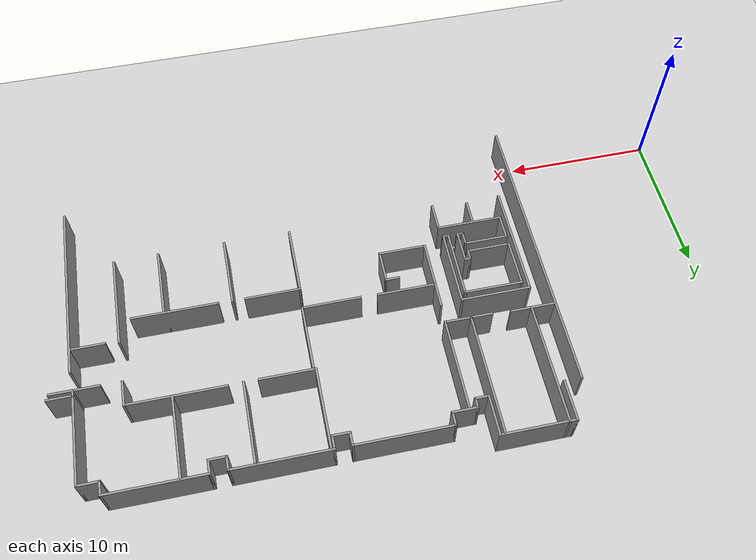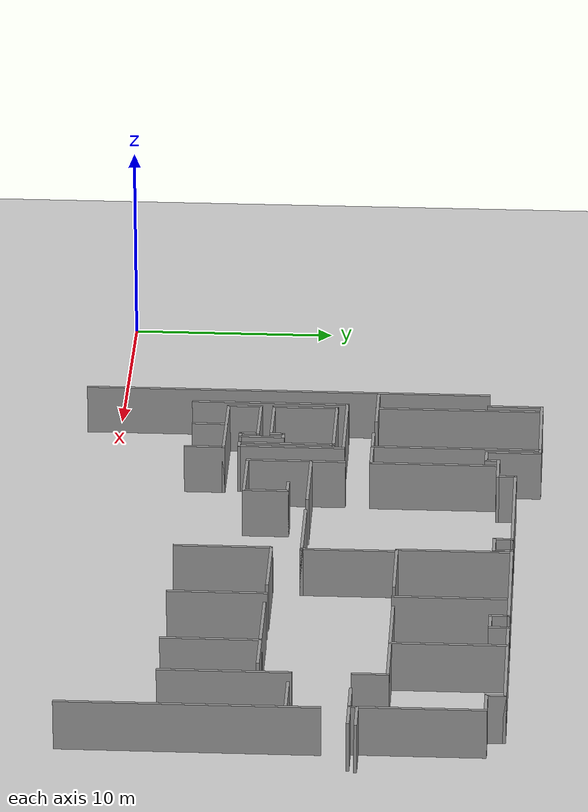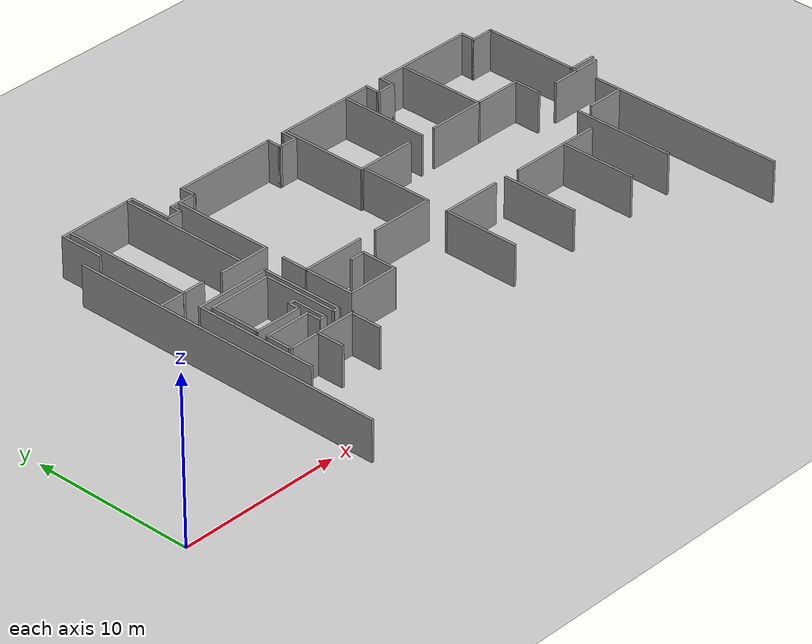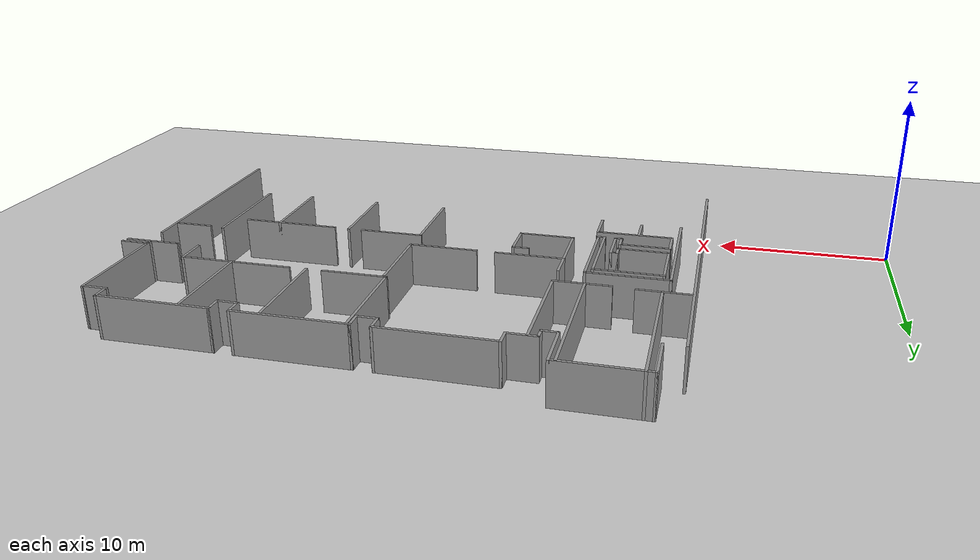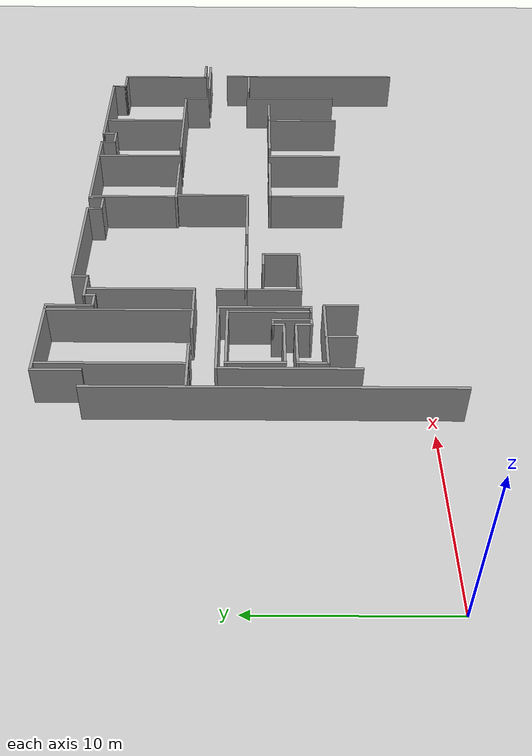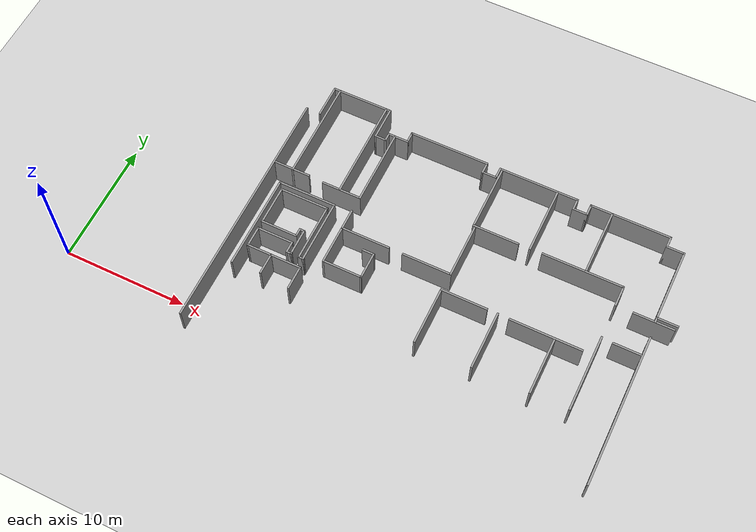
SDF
<sdf version="1.7">
 <world name="default">
  <model name="ground_plane">
   <static>1</static>
   <link name="link">
    <collision name="collision">
     <geometry><plane><normal>0 0 1</normal><size>100 100</size></plane></geometry>
     <surface>
      <contact><collide_bitmask>65535</collide_bitmask></contact>
      <friction><ode><mu>100</mu><mu2>50</mu2></ode></friction>
     </surface>
    </collision>
    <visual name="visual">
     <cast_shadows>0</cast_shadows>
     <geometry><plane><normal>0 0 1</normal><size>100 100</size></plane></geometry>
     <material>
      <script><uri>file://media/materials/scripts/gazebo.material</uri><name>Gazebo/Grey</name></script>
     </material>
    </visual>
   </link>
  </model>
  <model name="minerva">
   <pose>-0.765751 0.164905 0 0 -0 0</pose>
   <link name="Wall_1">
    <collision name="Wall_1_Collision">
     <geometry><box><size>2.75 0.15 2.5</size></box></geometry>
     <pose>0 0 1.25 0 -0 0</pose>
    </collision>
    <visual name="Wall_1_Visual">
     <pose>0 0 1.25 0 -0 0</pose>
     <geometry><box><size>2.75 0.15 2.5</size></box></geometry>
     <material>
      <script><uri>file://media/materials/scripts/gazebo.material</uri><name>Gazebo/Grey</name></script>
      <ambient>1 1 1 1</ambient>
     </material>
     <meta><layer>0</layer></meta>
    </visual>
    <pose>13 19.4608 0 0 -0 1.5708</pose>
   </link>
   <link name="Wall_119">
    <collision name="Wall_119_Collision">
     <geometry><box><size>12.25 0.15 2.5</size></box></geometry>
     <pose>0 0 1.25 0 -0 0</pose>
    </collision>
    <visual name="Wall_119_Visual">
     <pose>0 0 1.25 0 -0 0</pose>
     <geometry><box><size>12.25 0.15 2.5</size></box></geometry>
     <material>
      <script><uri>file://media/materials/scripts/gazebo.material</uri><name>Gazebo/Grey</name></script>
      <ambient>1 1 1 1</ambient>
     </material>
     <meta><layer>0</layer></meta>
    </visual>
    <pose>43.02 5.16842 0 0 -0 -1.5708</pose>
   </link>
   <link name="Wall_142">
    <collision name="Wall_142_Collision">
     <geometry><box><size>5.5 0.15 2.5</size></box></geometry>
     <pose>0 0 1.25 0 -0 0</pose>
    </collision>
    <visual name="Wall_142_Visual">
     <pose>0 0 1.25 0 -0 0</pose>
     <geometry><box><size>5.5 0.15 2.5</size></box></geometry>
     <material>
      <script><uri>file://media/materials/scripts/gazebo.material</uri><name>Gazebo/Grey</name></script>
      <ambient>1 1 1 1</ambient>
     </material>
     <meta><layer>0</layer></meta>
    </visual>
    <pose>32.4923 16.8369 0 0 -0 1.5708</pose>
   </link>
   <link name="Wall_144">
    <collision name="Wall_144_Collision">
     <geometry><box><size>6.5 0.15 2.5</size></box></geometry>
     <pose>0 0 1.25 0 -0 0</pose>
    </collision>
    <visual name="Wall_144_Visual">
     <pose>0 0 1.25 0 -0 0</pose>
     <geometry><box><size>6.5 0.15 2.5</size></box></geometry>
     <material>
      <script><uri>file://media/materials/scripts/gazebo.material</uri><name>Gazebo/Grey</name></script>
      <ambient>1 1 1 1</ambient>
     </material>
     <meta><layer>0</layer></meta>
    </visual>
    <pose>36.6783 14.1924 0 0 -0 3.14159</pose>
   </link>
   <link name="Wall_146">
    <collision name="Wall_146_Collision">
     <geometry><box><size>3.75 0.15 2.5</size></box></geometry>
     <pose>0 0 1.25 0 -0 0</pose>
    </collision>
    <visual name="Wall_146_Visual">
     <pose>0 0 1.25 0 -0 0</pose>
     <geometry><box><size>3.75 0.15 2.5</size></box></geometry>
     <material>
      <script><uri>file://media/materials/scripts/gazebo.material</uri><name>Gazebo/Grey</name></script>
      <ambient>1 1 1 1</ambient>
     </material>
     <meta><layer>0</layer></meta>
    </visual>
    <pose>29.7341 14.1619 0 0 -0 3.14159</pose>
   </link>
   <link name="Wall_147">
    <collision name="Wall_147_Collision">
     <geometry><box><size>5.5 0.15 2.5</size></box></geometry>
     <pose>0 0 1.25 0 -0 0</pose>
    </collision>
    <visual name="Wall_147_Visual">
     <pose>0 0 1.25 0 -0 0</pose>
     <geometry><box><size>5.5 0.15 2.5</size></box></geometry>
     <material>
      <script><uri>file://media/materials/scripts/gazebo.material</uri><name>Gazebo/Grey</name></script>
      <ambient>1 1 1 1</ambient>
     </material>
     <meta><layer>0</layer></meta>
    </visual>
    <pose>27.9341 16.8369 0 0 -0 1.5708</pose>
   </link>
   <link name="Wall_149">
    <collision name="Wall_149_Collision">
     <geometry><box><size>5.5 0.15 2.5</size></box></geometry>
     <pose>0 0 1.25 0 -0 0</pose>
    </collision>
    <visual name="Wall_149_Visual">
     <pose>0 0 1.25 0 -0 0</pose>
     <geometry><box><size>5.5 0.15 2.5</size></box></geometry>
     <material>
      <script><uri>file://media/materials/scripts/gazebo.material</uri><name>Gazebo/Grey</name></script>
      <ambient>1 1 1 1</ambient>
     </material>
     <meta><layer>0</layer></meta>
    </visual>
    <pose>36.9028 16.8674 0 0 -0 1.5708</pose>
   </link>
   <link name="Wall_151">
    <collision name="Wall_151_Collision">
     <geometry><box><size>1.75 0.15 2.5</size></box></geometry>
     <pose>0 0 1.25 0 -0 0</pose>
    </collision>
    <visual name="Wall_151_Visual">
     <pose>0 0 1.25 0 -0 0</pose>
     <geometry><box><size>1.75 0.15 2.5</size></box></geometry>
     <material>
      <script><uri>file://media/materials/scripts/gazebo.material</uri><name>Gazebo/Grey</name></script>
      <ambient>1 1 1 1</ambient>
     </material>
     <meta><layer>0</layer></meta>
    </visual>
    <pose>39.8533 13.3924 0 0 -0 -1.5708</pose>
   </link>
   <link name="Wall_157">
    <collision name="Wall_157_Collision">
     <geometry><box><size>3.25 0.15 2.5</size></box></geometry>
     <pose>0 0 1.25 0 -0 0</pose>
    </collision>
    <visual name="Wall_157_Visual">
     <pose>0 0 1.25 0 -0 0</pose>
     <geometry><box><size>3.25 0.15 2.5</size></box></geometry>
     <material>
      <script><uri>file://media/materials/scripts/gazebo.material</uri><name>Gazebo/Grey</name></script>
      <ambient>1 1 1 1</ambient>
     </material>
     <meta><layer>0</layer></meta>
    </visual>
    <pose>42.8075 12.558 0 0 -0 0</pose>
   </link>
   <link name="Wall_159">
    <collision name="Wall_159_Collision">
     <geometry><box><size>0.5 0.15 2.5</size></box></geometry>
     <pose>0 0 1.25 0 -0 0</pose>
    </collision>
    <visual name="Wall_159_Visual">
     <pose>0 0 1.25 0 -0 0</pose>
     <geometry><box><size>0.5 0.15 2.5</size></box></geometry>
     <material>
      <script><uri>file://media/materials/scripts/gazebo.material</uri><name>Gazebo/Grey</name></script>
      <ambient>1 1 1 1</ambient>
     </material>
     <meta><layer>0</layer></meta>
    </visual>
    <pose>42.9 12.7358 0 0 -0 -1.5708</pose>
   </link>
   <link name="Wall_161">
    <collision name="Wall_161_Collision">
     <geometry><box><size>2.25 0.15 2.5</size></box></geometry>
     <pose>0 0 1.25 0 -0 0</pose>
    </collision>
    <visual name="Wall_161_Visual">
     <pose>0 0 1.25 0 -0 0</pose>
     <geometry><box><size>2.25 0.15 2.5</size></box></geometry>
     <material>
      <script><uri>file://media/materials/scripts/gazebo.material</uri><name>Gazebo/Grey</name></script>
      <ambient>1 1 1 1</ambient>
     </material>
     <meta><layer>0</layer></meta>
    </visual>
    <pose>41.8443 9.66213 0 0 -0 0</pose>
   </link>
   <link name="Wall_165">
    <collision name="Wall_165_Collision">
     <geometry><box><size>6.25 0.15 2.5</size></box></geometry>
     <pose>0 0 1.25 0 -0 0</pose>
    </collision>
    <visual name="Wall_165_Visual">
     <pose>0 0 1.25 0 -0 0</pose>
     <geometry><box><size>6.25 0.15 2.5</size></box></geometry>
     <material>
      <script><uri>file://media/materials/scripts/gazebo.material</uri><name>Gazebo/Grey</name></script>
      <ambient>1 1 1 1</ambient>
     </material>
     <meta><layer>0</layer></meta>
    </visual>
    <pose>39.8814 6.67712 0 0 -0 -1.5708</pose>
   </link>
   <link name="Wall_167">
    <collision name="Wall_167_Collision">
     <geometry><box><size>3.75 0.15 2.5</size></box></geometry>
     <pose>0 0 1.25 0 -0 0</pose>
    </collision>
    <visual name="Wall_167_Visual">
     <pose>0 0 1.25 0 -0 0</pose>
     <geometry><box><size>3.75 0.15 2.5</size></box></geometry>
     <material>
      <script><uri>file://media/materials/scripts/gazebo.material</uri><name>Gazebo/Grey</name></script>
      <ambient>1 1 1 1</ambient>
     </material>
     <meta><layer>0</layer></meta>
    </visual>
    <pose>29.7921 8.20624 0 0 -0 0</pose>
   </link>
   <link name="Wall_169">
    <collision name="Wall_169_Collision">
     <geometry><box><size>5.75 0.15 2.5</size></box></geometry>
     <pose>0 0 1.25 0 -0 0</pose>
    </collision>
    <visual name="Wall_169_Visual">
     <pose>0 0 1.25 0 -0 0</pose>
     <geometry><box><size>5.75 0.15 2.5</size></box></geometry>
     <material>
      <script><uri>file://media/materials/scripts/gazebo.material</uri><name>Gazebo/Grey</name></script>
      <ambient>1 1 1 1</ambient>
     </material>
     <meta><layer>0</layer></meta>
    </visual>
    <pose>36.2143 8.17979 0 0 -0 0</pose>
   </link>
   <link name="Wall_171">
    <collision name="Wall_171_Collision">
     <geometry><box><size>4.75 0.15 2.5</size></box></geometry>
     <pose>0 0 1.25 0 -0 0</pose>
    </collision>
    <visual name="Wall_171_Visual">
     <pose>0 0 1.25 0 -0 0</pose>
     <geometry><box><size>4.75 0.15 2.5</size></box></geometry>
     <material>
      <script><uri>file://media/materials/scripts/gazebo.material</uri><name>Gazebo/Grey</name></script>
      <ambient>1 1 1 1</ambient>
     </material>
     <meta><layer>0</layer></meta>
    </visual>
    <pose>36.919 5.87979 0 0 -0 -1.5708</pose>
   </link>
   <link name="Wall_173">
    <collision name="Wall_173_Collision">
     <geometry><box><size>4.75 0.15 2.5</size></box></geometry>
     <pose>0 0 1.25 0 -0 0</pose>
    </collision>
    <visual name="Wall_173_Visual">
     <pose>0 0 1.25 0 -0 0</pose>
     <geometry><box><size>4.75 0.15 2.5</size></box></geometry>
     <material>
      <script><uri>file://media/materials/scripts/gazebo.material</uri><name>Gazebo/Grey</name></script>
      <ambient>1 1 1 1</ambient>
     </material>
     <meta><layer>0</layer></meta>
    </visual>
    <pose>32.4621 5.89302 0 0 -0 -1.5708</pose>
   </link>
   <link name="Wall_175">
    <collision name="Wall_175_Collision">
     <geometry><box><size>4.75 0.15 2.5</size></box></geometry>
     <pose>0 0 1.25 0 -0 0</pose>
    </collision>
    <visual name="Wall_175_Visual">
     <pose>0 0 1.25 0 -0 0</pose>
     <geometry><box><size>4.75 0.15 2.5</size></box></geometry>
     <material>
      <script><uri>file://media/materials/scripts/gazebo.material</uri><name>Gazebo/Grey</name></script>
      <ambient>1 1 1 1</ambient>
     </material>
     <meta><layer>0</layer></meta>
    </visual>
    <pose>27.9921 5.90624 0 0 -0 -1.5708</pose>
   </link>
   <link name="Wall_2">
    <collision name="Wall_2_Collision">
     <geometry><box><size>5 0.15 2.5</size></box></geometry>
     <pose>0 0 1.25 0 -0 0</pose>
    </collision>
    <visual name="Wall_2_Visual">
     <pose>0 0 1.25 0 -0 0</pose>
     <geometry><box><size>5 0.15 2.5</size></box></geometry>
     <material>
      <script><uri>file://media/materials/scripts/gazebo.material</uri><name>Gazebo/Grey</name></script>
      <ambient>1 1 1 1</ambient>
     </material>
     <meta><layer>0</layer></meta>
    </visual>
    <pose>15.425 20.7608 0 0 -0 0</pose>
   </link>
   <link name="Wall_250">
    <collision name="Wall_250_Collision">
     <geometry><box><size>6.25 0.15 2.5</size></box></geometry>
     <pose>0 0 1.25 0 -0 0</pose>
    </collision>
    <visual name="Wall_250_Visual">
     <pose>0 0 1.25 0 -0 0</pose>
     <geometry><box><size>6.25 0.15 2.5</size></box></geometry>
     <material>
      <script><uri>file://media/materials/scripts/gazebo.material</uri><name>Gazebo/Grey</name></script>
      <ambient>1 1 1 1</ambient>
     </material>
     <meta><layer>0</layer></meta>
    </visual>
    <pose>19.2271 15.6335 0 0 -0 1.5708</pose>
   </link>
   <link name="Wall_252">
    <collision name="Wall_252_Collision">
     <geometry><box><size>1.75 0.15 2.5</size></box></geometry>
     <pose>0 0 1.25 0 -0 0</pose>
    </collision>
    <visual name="Wall_252_Visual">
     <pose>0 0 1.25 0 -0 0</pose>
     <geometry><box><size>1.75 0.15 2.5</size></box></geometry>
     <material>
      <script><uri>file://media/materials/scripts/gazebo.material</uri><name>Gazebo/Grey</name></script>
      <ambient>1 1 1 1</ambient>
     </material>
     <meta><layer>0</layer></meta>
    </visual>
    <pose>19.1861 10.4709 0 0 -0 -1.5708</pose>
   </link>
   <link name="Wall_253">
    <collision name="Wall_253_Collision">
     <geometry><box><size>4 0.15 2.5</size></box></geometry>
     <pose>0 0 1.25 0 -0 0</pose>
    </collision>
    <visual name="Wall_253_Visual">
     <pose>0 0 1.25 0 -0 0</pose>
     <geometry><box><size>4 0.15 2.5</size></box></geometry>
     <material>
      <script><uri>file://media/materials/scripts/gazebo.material</uri><name>Gazebo/Grey</name></script>
      <ambient>1 1 1 1</ambient>
     </material>
     <meta><layer>0</layer></meta>
    </visual>
    <pose>21.1111 9.67089 0 0 -0 0</pose>
   </link>
   <link name="Wall_255">
    <collision name="Wall_255_Collision">
     <geometry><box><size>4 0.15 2.5</size></box></geometry>
     <pose>0 0 1.25 0 -0 0</pose>
    </collision>
    <visual name="Wall_255_Visual">
     <pose>0 0 1.25 0 -0 0</pose>
     <geometry><box><size>4 0.15 2.5</size></box></geometry>
     <material>
      <script><uri>file://media/materials/scripts/gazebo.material</uri><name>Gazebo/Grey</name></script>
      <ambient>1 1 1 1</ambient>
     </material>
     <meta><layer>0</layer></meta>
    </visual>
    <pose>26.1564 9.65066 0 0 -0 0</pose>
   </link>
   <link name="Wall_256">
    <collision name="Wall_256_Collision">
     <geometry><box><size>4.5 0.15 2.5</size></box></geometry>
     <pose>0 0 1.25 0 -0 0</pose>
    </collision>
    <visual name="Wall_256_Visual">
     <pose>0 0 1.25 0 -0 0</pose>
     <geometry><box><size>4.5 0.15 2.5</size></box></geometry>
     <material>
      <script><uri>file://media/materials/scripts/gazebo.material</uri><name>Gazebo/Grey</name></script>
      <ambient>1 1 1 1</ambient>
     </material>
     <meta><layer>0</layer></meta>
    </visual>
    <pose>28.0814 11.8257 0 0 -0 1.5708</pose>
   </link>
   <link name="Wall_258">
    <collision name="Wall_258_Collision">
     <geometry><box><size>3.25 0.15 2.5</size></box></geometry>
     <pose>0 0 1.25 0 -0 0</pose>
    </collision>
    <visual name="Wall_258_Visual">
     <pose>0 0 1.25 0 -0 0</pose>
     <geometry><box><size>3.25 0.15 2.5</size></box></geometry>
     <material>
      <script><uri>file://media/materials/scripts/gazebo.material</uri><name>Gazebo/Grey</name></script>
      <ambient>1 1 1 1</ambient>
     </material>
     <meta><layer>0</layer></meta>
    </visual>
    <pose>17.6771 12.5835 0 0 -0 3.14159</pose>
   </link>
   <link name="Wall_260">
    <collision name="Wall_260_Collision">
     <geometry><box><size>8.25 0.15 2.5</size></box></geometry>
     <pose>0 0 1.25 0 -0 0</pose>
    </collision>
    <visual name="Wall_260_Visual">
     <pose>0 0 1.25 0 -0 0</pose>
     <geometry><box><size>8.25 0.15 2.5</size></box></geometry>
     <material>
      <script><uri>file://media/materials/scripts/gazebo.material</uri><name>Gazebo/Grey</name></script>
      <ambient>1 1 1 1</ambient>
     </material>
     <meta><layer>0</layer></meta>
    </visual>
    <pose>17.5174 16.6581 0 0 -0 1.5708</pose>
   </link>
   <link name="Wall_266">
    <collision name="Wall_266_Collision">
     <geometry><box><size>8.25 0.15 2.5</size></box></geometry>
     <pose>0 0 1.25 0 -0 0</pose>
    </collision>
    <visual name="Wall_266_Visual">
     <pose>0 0 1.25 0 -0 0</pose>
     <geometry><box><size>8.25 0.15 2.5</size></box></geometry>
     <material>
      <script><uri>file://media/materials/scripts/gazebo.material</uri><name>Gazebo/Grey</name></script>
      <ambient>1 1 1 1</ambient>
     </material>
     <meta><layer>0</layer></meta>
    </visual>
    <pose>13.4746 16.7122 0 0 -0 -1.5708</pose>
   </link>
   <link name="Wall_268">
    <collision name="Wall_268_Collision">
     <geometry><box><size>3 0.15 2.5</size></box></geometry>
     <pose>0 0 1.25 0 -0 0</pose>
    </collision>
    <visual name="Wall_268_Visual">
     <pose>0 0 1.25 0 -0 0</pose>
     <geometry><box><size>3 0.15 2.5</size></box></geometry>
     <material>
      <script><uri>file://media/materials/scripts/gazebo.material</uri><name>Gazebo/Grey</name></script>
      <ambient>1 1 1 1</ambient>
     </material>
     <meta><layer>0</layer></meta>
    </visual>
    <pose>13.3949 12.6708 0 0 -0 3.14159</pose>
   </link>
   <link name="Wall_271">
    <collision name="Wall_271_Collision">
     <geometry><box><size>20 0.15 2.5</size></box></geometry>
     <pose>0 0 1.25 0 -0 0</pose>
    </collision>
    <visual name="Wall_271_Visual">
     <pose>0 0 1.25 0 -0 0</pose>
     <geometry><box><size>20 0.15 2.5</size></box></geometry>
     <material>
      <script><uri>file://media/materials/scripts/gazebo.material</uri><name>Gazebo/Grey</name></script>
      <ambient>1 1 1 1</ambient>
     </material>
     <meta><layer>0</layer></meta>
    </visual>
    <pose>11.8568 8.19668 0 0 -0 -1.5708</pose>
   </link>
   <link name="Wall_29">
    <collision name="Wall_29_Collision">
     <geometry><box><size>0.75 0.15 2.5</size></box></geometry>
     <pose>0 0 1.25 0 -0 0</pose>
    </collision>
    <visual name="Wall_29_Visual">
     <pose>0 0 1.25 0 -0 0</pose>
     <geometry><box><size>0.75 0.15 2.5</size></box></geometry>
     <material>
      <script><uri>file://media/materials/scripts/gazebo.material</uri><name>Gazebo/Grey</name></script>
      <ambient>1 1 1 1</ambient>
     </material>
     <meta><layer>0</layer></meta>
    </visual>
    <pose>18.7 18.4608 0 0 -0 1.5708</pose>
   </link>
   <link name="Wall_3">
    <collision name="Wall_3_Collision">
     <geometry><box><size>2.75 0.15 2.5</size></box></geometry>
     <pose>0 0 1.25 0 -0 0</pose>
    </collision>
    <visual name="Wall_3_Visual">
     <pose>0 0 1.25 0 -0 0</pose>
     <geometry><box><size>2.75 0.15 2.5</size></box></geometry>
     <material>
      <script><uri>file://media/materials/scripts/gazebo.material</uri><name>Gazebo/Grey</name></script>
      <ambient>1 1 1 1</ambient>
     </material>
     <meta><layer>0</layer></meta>
    </visual>
    <pose>17.85 19.4608 0 0 -0 -1.5708</pose>
   </link>
   <link name="Wall_30">
    <collision name="Wall_30_Collision">
     <geometry><box><size>1.75 0.15 2.5</size></box></geometry>
     <pose>0 0 1.25 0 -0 0</pose>
    </collision>
    <visual name="Wall_30_Visual">
     <pose>0 0 1.25 0 -0 0</pose>
     <geometry><box><size>1.75 0.15 2.5</size></box></geometry>
     <material>
      <script><uri>file://media/materials/scripts/gazebo.material</uri><name>Gazebo/Grey</name></script>
      <ambient>1 1 1 1</ambient>
     </material>
     <meta><layer>0</layer></meta>
    </visual>
    <pose>19.5 18.7608 0 0 -0 0</pose>
   </link>
   <link name="Wall_31">
    <collision name="Wall_31_Collision">
     <geometry><box><size>1 0.15 2.5</size></box></geometry>
     <pose>0 0 1.25 0 -0 0</pose>
    </collision>
    <visual name="Wall_31_Visual">
     <pose>0 0 1.25 0 -0 0</pose>
     <geometry><box><size>1 0.15 2.5</size></box></geometry>
     <material>
      <script><uri>file://media/materials/scripts/gazebo.material</uri><name>Gazebo/Grey</name></script>
      <ambient>1 1 1 1</ambient>
     </material>
     <meta><layer>0</layer></meta>
    </visual>
    <pose>20.3 19.1858 0 0 -0 1.5708</pose>
   </link>
   <link name="Wall_32">
    <collision name="Wall_32_Collision">
     <geometry><box><size>6.5 0.15 2.5</size></box></geometry>
     <pose>0 0 1.25 0 -0 0</pose>
    </collision>
    <visual name="Wall_32_Visual">
     <pose>0 0 1.25 0 -0 0</pose>
     <geometry><box><size>6.5 0.15 2.5</size></box></geometry>
     <material>
      <script><uri>file://media/materials/scripts/gazebo.material</uri><name>Gazebo/Grey</name></script>
      <ambient>1 1 1 1</ambient>
     </material>
     <meta><layer>0</layer></meta>
    </visual>
    <pose>23.475 19.6108 0 0 -0 0</pose>
   </link>
   <link name="Wall_33">
    <collision name="Wall_33_Collision">
     <geometry><box><size>1 0.15 2.5</size></box></geometry>
     <pose>0 0 1.25 0 -0 0</pose>
    </collision>
    <visual name="Wall_33_Visual">
     <pose>0 0 1.25 0 -0 0</pose>
     <geometry><box><size>1 0.15 2.5</size></box></geometry>
     <material>
      <script><uri>file://media/materials/scripts/gazebo.material</uri><name>Gazebo/Grey</name></script>
      <ambient>1 1 1 1</ambient>
     </material>
     <meta><layer>0</layer></meta>
    </visual>
    <pose>26.65 19.1858 0 0 -0 -1.5708</pose>
   </link>
   <link name="Wall_34">
    <collision name="Wall_34_Collision">
     <geometry><box><size>1.25 0.15 2.5</size></box></geometry>
     <pose>0 0 1.25 0 -0 0</pose>
    </collision>
    <visual name="Wall_34_Visual">
     <pose>0 0 1.25 0 -0 0</pose>
     <geometry><box><size>1.25 0.15 2.5</size></box></geometry>
     <material>
      <script><uri>file://media/materials/scripts/gazebo.material</uri><name>Gazebo/Grey</name></script>
      <ambient>1 1 1 1</ambient>
     </material>
     <meta><layer>0</layer></meta>
    </visual>
    <pose>27.2 18.7608 0 0 -0 0</pose>
   </link>
   <link name="Wall_35">
    <collision name="Wall_35_Collision">
     <geometry><box><size>1 0.15 2.5</size></box></geometry>
     <pose>0 0 1.25 0 -0 0</pose>
    </collision>
    <visual name="Wall_35_Visual">
     <pose>0 0 1.25 0 -0 0</pose>
     <geometry><box><size>1 0.15 2.5</size></box></geometry>
     <material>
      <script><uri>file://media/materials/scripts/gazebo.material</uri><name>Gazebo/Grey</name></script>
      <ambient>1 1 1 1</ambient>
     </material>
     <meta><layer>0</layer></meta>
    </visual>
    <pose>27.75 19.1858 0 0 -0 1.5708</pose>
   </link>
   <link name="Wall_36">
    <collision name="Wall_36_Collision">
     <geometry><box><size>6.5 0.15 2.5</size></box></geometry>
     <pose>0 0 1.25 0 -0 0</pose>
    </collision>
    <visual name="Wall_36_Visual">
     <pose>0 0 1.25 0 -0 0</pose>
     <geometry><box><size>6.5 0.15 2.5</size></box></geometry>
     <material>
      <script><uri>file://media/materials/scripts/gazebo.material</uri><name>Gazebo/Grey</name></script>
      <ambient>1 1 1 1</ambient>
     </material>
     <meta><layer>0</layer></meta>
    </visual>
    <pose>30.925 19.6108 0 0 -0 0</pose>
   </link>
   <link name="Wall_37">
    <collision name="Wall_37_Collision">
     <geometry><box><size>1 0.15 2.5</size></box></geometry>
     <pose>0 0 1.25 0 -0 0</pose>
    </collision>
    <visual name="Wall_37_Visual">
     <pose>0 0 1.25 0 -0 0</pose>
     <geometry><box><size>1 0.15 2.5</size></box></geometry>
     <material>
      <script><uri>file://media/materials/scripts/gazebo.material</uri><name>Gazebo/Grey</name></script>
      <ambient>1 1 1 1</ambient>
     </material>
     <meta><layer>0</layer></meta>
    </visual>
    <pose>34.1 19.1858 0 0 -0 -1.5708</pose>
   </link>
   <link name="Wall_38">
    <collision name="Wall_38_Collision">
     <geometry><box><size>1.25 0.15 2.5</size></box></geometry>
     <pose>0 0 1.25 0 -0 0</pose>
    </collision>
    <visual name="Wall_38_Visual">
     <pose>0 0 1.25 0 -0 0</pose>
     <geometry><box><size>1.25 0.15 2.5</size></box></geometry>
     <material>
      <script><uri>file://media/materials/scripts/gazebo.material</uri><name>Gazebo/Grey</name></script>
      <ambient>1 1 1 1</ambient>
     </material>
     <meta><layer>0</layer></meta>
    </visual>
    <pose>34.65 18.7608 0 0 -0 0</pose>
   </link>
   <link name="Wall_39">
    <collision name="Wall_39_Collision">
     <geometry><box><size>1 0.15 2.5</size></box></geometry>
     <pose>0 0 1.25 0 -0 0</pose>
    </collision>
    <visual name="Wall_39_Visual">
     <pose>0 0 1.25 0 -0 0</pose>
     <geometry><box><size>1 0.15 2.5</size></box></geometry>
     <material>
      <script><uri>file://media/materials/scripts/gazebo.material</uri><name>Gazebo/Grey</name></script>
      <ambient>1 1 1 1</ambient>
     </material>
     <meta><layer>0</layer></meta>
    </visual>
    <pose>35.2 19.1858 0 0 -0 1.5708</pose>
   </link>
   <link name="Wall_4">
    <collision name="Wall_4_Collision">
     <geometry><box><size>1 0.15 2.5</size></box></geometry>
     <pose>0 0 1.25 0 -0 0</pose>
    </collision>
    <visual name="Wall_4_Visual">
     <pose>0 0 1.25 0 -0 0</pose>
     <geometry><box><size>1 0.15 2.5</size></box></geometry>
     <material>
      <script><uri>file://media/materials/scripts/gazebo.material</uri><name>Gazebo/Grey</name></script>
      <ambient>1 1 1 1</ambient>
     </material>
     <meta><layer>0</layer></meta>
    </visual>
    <pose>18.275 18.1608 0 0 -0 0</pose>
   </link>
   <link name="Wall_41">
    <collision name="Wall_41_Collision">
     <geometry><box><size>6.5 0.15 2.5</size></box></geometry>
     <pose>0 0 1.25 0 -0 0</pose>
    </collision>
    <visual name="Wall_41_Visual">
     <pose>0 0 1.25 0 -0 0</pose>
     <geometry><box><size>6.5 0.15 2.5</size></box></geometry>
     <material>
      <script><uri>file://media/materials/scripts/gazebo.material</uri><name>Gazebo/Grey</name></script>
      <ambient>1 1 1 1</ambient>
     </material>
     <meta><layer>0</layer></meta>
    </visual>
    <pose>38.375 19.6108 0 0 -0 0</pose>
   </link>
   <link name="Wall_42">
    <collision name="Wall_42_Collision">
     <geometry><box><size>1 0.15 2.5</size></box></geometry>
     <pose>0 0 1.25 0 -0 0</pose>
    </collision>
    <visual name="Wall_42_Visual">
     <pose>0 0 1.25 0 -0 0</pose>
     <geometry><box><size>1 0.15 2.5</size></box></geometry>
     <material>
      <script><uri>file://media/materials/scripts/gazebo.material</uri><name>Gazebo/Grey</name></script>
      <ambient>1 1 1 1</ambient>
     </material>
     <meta><layer>0</layer></meta>
    </visual>
    <pose>41.55 19.1858 0 0 -0 -1.5708</pose>
   </link>
   <link name="Wall_43">
    <collision name="Wall_43_Collision">
     <geometry><box><size>1.5 0.15 2.5</size></box></geometry>
     <pose>0 0 1.25 0 -0 0</pose>
    </collision>
    <visual name="Wall_43_Visual">
     <pose>0 0 1.25 0 -0 0</pose>
     <geometry><box><size>1.5 0.15 2.5</size></box></geometry>
     <material>
      <script><uri>file://media/materials/scripts/gazebo.material</uri><name>Gazebo/Grey</name></script>
      <ambient>1 1 1 1</ambient>
     </material>
     <meta><layer>0</layer></meta>
    </visual>
    <pose>42.225 18.7608 0 0 -0 0</pose>
   </link>
   <link name="Wall_431">
    <collision name="Wall_431_Collision">
     <geometry><box><size>4.75 0.15 2.5</size></box></geometry>
     <pose>0 0 1.25 0 -0 0</pose>
    </collision>
    <visual name="Wall_431_Visual">
     <pose>0 0 1.25 0 -0 0</pose>
     <geometry><box><size>4.75 0.15 2.5</size></box></geometry>
     <material>
      <script><uri>file://media/materials/scripts/gazebo.material</uri><name>Gazebo/Grey</name></script>
      <ambient>1 1 1 1</ambient>
     </material>
     <meta><layer>0</layer></meta>
    </visual>
    <pose>15.4593 11.1735 0 0 -0 0</pose>
   </link>
   <link name="Wall_432">
    <collision name="Wall_432_Collision">
     <geometry><box><size>5.25 0.15 2.5</size></box></geometry>
     <pose>0 0 1.25 0 -0 0</pose>
    </collision>
    <visual name="Wall_432_Visual">
     <pose>0 0 1.25 0 -0 0</pose>
     <geometry><box><size>5.25 0.15 2.5</size></box></geometry>
     <material>
      <script><uri>file://media/materials/scripts/gazebo.material</uri><name>Gazebo/Grey</name></script>
      <ambient>1 1 1 1</ambient>
     </material>
     <meta><layer>0</layer></meta>
    </visual>
    <pose>17.7593 8.62352 0 0 -0 -1.5708</pose>
   </link>
   <link name="Wall_433">
    <collision name="Wall_433_Collision">
     <geometry><box><size>0.5 0.15 2.5</size></box></geometry>
     <pose>0 0 1.25 0 -0 0</pose>
    </collision>
    <visual name="Wall_433_Visual">
     <pose>0 0 1.25 0 -0 0</pose>
     <geometry><box><size>0.5 0.15 2.5</size></box></geometry>
     <material>
      <script><uri>file://media/materials/scripts/gazebo.material</uri><name>Gazebo/Grey</name></script>
      <ambient>1 1 1 1</ambient>
     </material>
     <meta><layer>0</layer></meta>
    </visual>
    <pose>17.5843 6.07352 0 0 -0 3.14159</pose>
   </link>
   <link name="Wall_434">
    <collision name="Wall_434_Collision">
     <geometry><box><size>4.75 0.15 2.5</size></box></geometry>
     <pose>0 0 1.25 0 -0 0</pose>
    </collision>
    <visual name="Wall_434_Visual">
     <pose>0 0 1.25 0 -0 0</pose>
     <geometry><box><size>4.75 0.15 2.5</size></box></geometry>
     <material>
      <script><uri>file://media/materials/scripts/gazebo.material</uri><name>Gazebo/Grey</name></script>
      <ambient>1 1 1 1</ambient>
     </material>
     <meta><layer>0</layer></meta>
    </visual>
    <pose>17.4093 8.37352 0 0 -0 1.5708</pose>
   </link>
   <link name="Wall_435">
    <collision name="Wall_435_Collision">
     <geometry><box><size>4 0.15 2.5</size></box></geometry>
     <pose>0 0 1.25 0 -0 0</pose>
    </collision>
    <visual name="Wall_435_Visual">
     <pose>0 0 1.25 0 -0 0</pose>
     <geometry><box><size>4 0.15 2.5</size></box></geometry>
     <material>
      <script><uri>file://media/materials/scripts/gazebo.material</uri><name>Gazebo/Grey</name></script>
      <ambient>1 1 1 1</ambient>
     </material>
     <meta><layer>0</layer></meta>
    </visual>
    <pose>15.4843 10.6735 0 0 -0 3.14159</pose>
   </link>
   <link name="Wall_436">
    <collision name="Wall_436_Collision">
     <geometry><box><size>3.25 0.15 2.5</size></box></geometry>
     <pose>0 0 1.25 0 -0 0</pose>
    </collision>
    <visual name="Wall_436_Visual">
     <pose>0 0 1.25 0 -0 0</pose>
     <geometry><box><size>3.25 0.15 2.5</size></box></geometry>
     <material>
      <script><uri>file://media/materials/scripts/gazebo.material</uri><name>Gazebo/Grey</name></script>
      <ambient>1 1 1 1</ambient>
     </material>
     <meta><layer>0</layer></meta>
    </visual>
    <pose>13.5593 9.12352 0 0 -0 -1.5708</pose>
   </link>
   <link name="Wall_437">
    <collision name="Wall_437_Collision">
     <geometry><box><size>3 0.15 2.5</size></box></geometry>
     <pose>0 0 1.25 0 -0 0</pose>
    </collision>
    <visual name="Wall_437_Visual">
     <pose>0 0 1.25 0 -0 0</pose>
     <geometry><box><size>3 0.15 2.5</size></box></geometry>
     <material>
      <script><uri>file://media/materials/scripts/gazebo.material</uri><name>Gazebo/Grey</name></script>
      <ambient>1 1 1 1</ambient>
     </material>
     <meta><layer>0</layer></meta>
    </visual>
    <pose>14.9843 7.57352 0 0 -0 0</pose>
   </link>
   <link name="Wall_438">
    <collision name="Wall_438_Collision">
     <geometry><box><size>0.75 0.15 2.5</size></box></geometry>
     <pose>0 0 1.25 0 -0 0</pose>
    </collision>
    <visual name="Wall_438_Visual">
     <pose>0 0 1.25 0 -0 0</pose>
     <geometry><box><size>0.75 0.15 2.5</size></box></geometry>
     <material>
      <script><uri>file://media/materials/scripts/gazebo.material</uri><name>Gazebo/Grey</name></script>
      <ambient>1 1 1 1</ambient>
     </material>
     <meta><layer>0</layer></meta>
    </visual>
    <pose>16.4093 7.87352 0 0 -0 1.5708</pose>
   </link>
   <link name="Wall_439">
    <collision name="Wall_439_Collision">
     <geometry><box><size>0.5 0.15 2.5</size></box></geometry>
     <pose>0 0 1.25 0 -0 0</pose>
    </collision>
    <visual name="Wall_439_Visual">
     <pose>0 0 1.25 0 -0 0</pose>
     <geometry><box><size>0.5 0.15 2.5</size></box></geometry>
     <material>
      <script><uri>file://media/materials/scripts/gazebo.material</uri><name>Gazebo/Grey</name></script>
      <ambient>1 1 1 1</ambient>
     </material>
     <meta><layer>0</layer></meta>
    </visual>
    <pose>16.5843 8.17352 0 0 -0 0</pose>
   </link>
   <link name="Wall_44">
    <collision name="Wall_44_Collision">
     <geometry><box><size>6 0.15 2.5</size></box></geometry>
     <pose>0 0 1.25 0 -0 0</pose>
    </collision>
    <visual name="Wall_44_Visual">
     <pose>0 0 1.25 0 -0 0</pose>
     <geometry><box><size>6 0.15 2.5</size></box></geometry>
     <material>
      <script><uri>file://media/materials/scripts/gazebo.material</uri><name>Gazebo/Grey</name></script>
      <ambient>1 1 1 1</ambient>
     </material>
     <meta><layer>0</layer></meta>
    </visual>
    <pose>42.9 15.8358 0 0 -0 -1.5708</pose>
   </link>
   <link name="Wall_440">
    <collision name="Wall_440_Collision">
     <geometry><box><size>2.25 0.15 2.5</size></box></geometry>
     <pose>0 0 1.25 0 -0 0</pose>
    </collision>
    <visual name="Wall_440_Visual">
     <pose>0 0 1.25 0 -0 0</pose>
     <geometry><box><size>2.25 0.15 2.5</size></box></geometry>
     <material>
      <script><uri>file://media/materials/scripts/gazebo.material</uri><name>Gazebo/Grey</name></script>
      <ambient>1 1 1 1</ambient>
     </material>
     <meta><layer>0</layer></meta>
    </visual>
    <pose>16.7593 7.12352 0 0 -0 -1.5708</pose>
   </link>
   <link name="Wall_441">
    <collision name="Wall_441_Collision">
     <geometry><box><size>0.5 0.15 2.5</size></box></geometry>
     <pose>0 0 1.25 0 -0 0</pose>
    </collision>
    <visual name="Wall_441_Visual">
     <pose>0 0 1.25 0 -0 0</pose>
     <geometry><box><size>0.5 0.15 2.5</size></box></geometry>
     <material>
      <script><uri>file://media/materials/scripts/gazebo.material</uri><name>Gazebo/Grey</name></script>
      <ambient>1 1 1 1</ambient>
     </material>
     <meta><layer>0</layer></meta>
    </visual>
    <pose>16.5843 6.07352 0 0 -0 3.14159</pose>
   </link>
   <link name="Wall_442">
    <collision name="Wall_442_Collision">
     <geometry><box><size>1 0.15 2.5</size></box></geometry>
     <pose>0 0 1.25 0 -0 0</pose>
    </collision>
    <visual name="Wall_442_Visual">
     <pose>0 0 1.25 0 -0 0</pose>
     <geometry><box><size>1 0.15 2.5</size></box></geometry>
     <material>
      <script><uri>file://media/materials/scripts/gazebo.material</uri><name>Gazebo/Grey</name></script>
      <ambient>1 1 1 1</ambient>
     </material>
     <meta><layer>0</layer></meta>
    </visual>
    <pose>16.4093 6.49852 0 0 -0 1.5708</pose>
   </link>
   <link name="Wall_443">
    <collision name="Wall_443_Collision">
     <geometry><box><size>3 0.15 2.5</size></box></geometry>
     <pose>0 0 1.25 0 -0 0</pose>
    </collision>
    <visual name="Wall_443_Visual">
     <pose>0 0 1.25 0 -0 0</pose>
     <geometry><box><size>3 0.15 2.5</size></box></geometry>
     <material>
      <script><uri>file://media/materials/scripts/gazebo.material</uri><name>Gazebo/Grey</name></script>
      <ambient>1 1 1 1</ambient>
     </material>
     <meta><layer>0</layer></meta>
    </visual>
    <pose>14.9843 6.92352 0 0 -0 3.14159</pose>
   </link>
   <link name="Wall_444">
    <collision name="Wall_444_Collision">
     <geometry><box><size>1.75 0.15 2.5</size></box></geometry>
     <pose>0 0 1.25 0 -0 0</pose>
    </collision>
    <visual name="Wall_444_Visual">
     <pose>0 0 1.25 0 -0 0</pose>
     <geometry><box><size>1.75 0.15 2.5</size></box></geometry>
     <material>
      <script><uri>file://media/materials/scripts/gazebo.material</uri><name>Gazebo/Grey</name></script>
      <ambient>1 1 1 1</ambient>
     </material>
     <meta><layer>0</layer></meta>
    </visual>
    <pose>13.5593 6.12352 0 0 -0 -1.5708</pose>
   </link>
   <link name="Wall_445">
    <collision name="Wall_445_Collision">
     <geometry><box><size>4.5 0.15 2.5</size></box></geometry>
     <pose>0 0 1.25 0 -0 0</pose>
    </collision>
    <visual name="Wall_445_Visual">
     <pose>0 0 1.25 0 -0 0</pose>
     <geometry><box><size>4.5 0.15 2.5</size></box></geometry>
     <material>
      <script><uri>file://media/materials/scripts/gazebo.material</uri><name>Gazebo/Grey</name></script>
      <ambient>1 1 1 1</ambient>
     </material>
     <meta><layer>0</layer></meta>
    </visual>
    <pose>15.7343 5.32352 0 0 -0 0</pose>
   </link>
   <link name="Wall_447">
    <collision name="Wall_447_Collision">
     <geometry><box><size>7.75 0.15 2.5</size></box></geometry>
     <pose>0 0 1.25 0 -0 0</pose>
    </collision>
    <visual name="Wall_447_Visual">
     <pose>0 0 1.25 0 -0 0</pose>
     <geometry><box><size>7.75 0.15 2.5</size></box></geometry>
     <material>
      <script><uri>file://media/materials/scripts/gazebo.material</uri><name>Gazebo/Grey</name></script>
      <ambient>1 1 1 1</ambient>
     </material>
     <meta><layer>0</layer></meta>
    </visual>
    <pose>13.1593 7.37352 0 0 -0 -1.5708</pose>
   </link>
   <link name="Wall_45">
    <collision name="Wall_45_Collision">
     <geometry><box><size>1.75 0.15 2.5</size></box></geometry>
     <pose>0 0 1.25 0 -0 0</pose>
    </collision>
    <visual name="Wall_45_Visual">
     <pose>0 0 1.25 0 -0 0</pose>
     <geometry><box><size>1.75 0.15 2.5</size></box></geometry>
     <material>
      <script><uri>file://media/materials/scripts/gazebo.material</uri><name>Gazebo/Grey</name></script>
      <ambient>1 1 1 1</ambient>
     </material>
     <meta><layer>0</layer></meta>
    </visual>
    <pose>43.7 12.9108 0 0 -0 0</pose>
   </link>
   <link name="Wall_452">
    <collision name="Wall_452_Collision">
     <geometry><box><size>1.75 0.15 2.5</size></box></geometry>
     <pose>0 0 1.25 0 -0 0</pose>
    </collision>
    <visual name="Wall_452_Visual">
     <pose>0 0 1.25 0 -0 0</pose>
     <geometry><box><size>1.75 0.15 2.5</size></box></geometry>
     <material>
      <script><uri>file://media/materials/scripts/gazebo.material</uri><name>Gazebo/Grey</name></script>
      <ambient>1 1 1 1</ambient>
     </material>
     <meta><layer>0</layer></meta>
    </visual>
    <pose>15.4943 4.51201 0 0 -0 -1.5708</pose>
   </link>
   <link name="Wall_454">
    <collision name="Wall_454_Collision">
     <geometry><box><size>2 0.15 2.5</size></box></geometry>
     <pose>0 0 1.25 0 -0 0</pose>
    </collision>
    <visual name="Wall_454_Visual">
     <pose>0 0 1.25 0 -0 0</pose>
     <geometry><box><size>2 0.15 2.5</size></box></geometry>
     <material>
      <script><uri>file://media/materials/scripts/gazebo.material</uri><name>Gazebo/Grey</name></script>
      <ambient>1 1 1 1</ambient>
     </material>
     <meta><layer>0</layer></meta>
    </visual>
    <pose>17.9093 4.39852 0 0 -0 -1.5708</pose>
   </link>
   <link name="Wall_457">
    <collision name="Wall_457_Collision">
     <geometry><box><size>3.25 0.15 2.5</size></box></geometry>
     <pose>0 0 1.25 0 -0 0</pose>
    </collision>
    <visual name="Wall_457_Visual">
     <pose>0 0 1.25 0 -0 0</pose>
     <geometry><box><size>3.25 0.15 2.5</size></box></geometry>
     <material>
      <script><uri>file://media/materials/scripts/gazebo.material</uri><name>Gazebo/Grey</name></script>
      <ambient>1 1 1 1</ambient>
     </material>
     <meta><layer>0</layer></meta>
    </visual>
    <pose>19.1861 8.12089 0 0 -0 -1.5708</pose>
   </link>
   <link name="Wall_458">
    <collision name="Wall_458_Collision">
     <geometry><box><size>3.25 0.15 2.5</size></box></geometry>
     <pose>0 0 1.25 0 -0 0</pose>
    </collision>
    <visual name="Wall_458_Visual">
     <pose>0 0 1.25 0 -0 0</pose>
     <geometry><box><size>3.25 0.15 2.5</size></box></geometry>
     <material>
      <script><uri>file://media/materials/scripts/gazebo.material</uri><name>Gazebo/Grey</name></script>
      <ambient>1 1 1 1</ambient>
     </material>
     <meta><layer>0</layer></meta>
    </visual>
    <pose>20.7361 6.57089 0 0 -0 0</pose>
   </link>
   <link name="Wall_459">
    <collision name="Wall_459_Collision">
     <geometry><box><size>2.25 0.15 2.5</size></box></geometry>
     <pose>0 0 1.25 0 -0 0</pose>
    </collision>
    <visual name="Wall_459_Visual">
     <pose>0 0 1.25 0 -0 0</pose>
     <geometry><box><size>2.25 0.15 2.5</size></box></geometry>
     <material>
      <script><uri>file://media/materials/scripts/gazebo.material</uri><name>Gazebo/Grey</name></script>
      <ambient>1 1 1 1</ambient>
     </material>
     <meta><layer>0</layer></meta>
    </visual>
    <pose>22.2861 7.62089 0 0 -0 1.5708</pose>
   </link>
   <link name="Wall_460">
    <collision name="Wall_460_Collision">
     <geometry><box><size>1 0.15 2.5</size></box></geometry>
     <pose>0 0 1.25 0 -0 0</pose>
    </collision>
    <visual name="Wall_460_Visual">
     <pose>0 0 1.25 0 -0 0</pose>
     <geometry><box><size>1 0.15 2.5</size></box></geometry>
     <material>
      <script><uri>file://media/materials/scripts/gazebo.material</uri><name>Gazebo/Grey</name></script>
      <ambient>1 1 1 1</ambient>
     </material>
     <meta><layer>0</layer></meta>
    </visual>
    <pose>21.8611 8.67089 0 0 -0 3.14159</pose>
   </link>
   <static>1</static>
  </model>
 </world>
</sdf>
